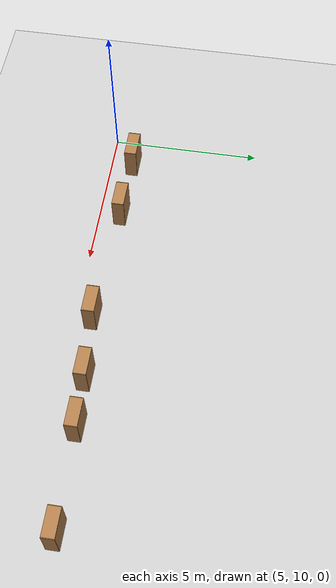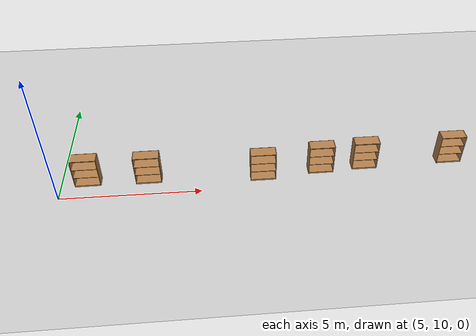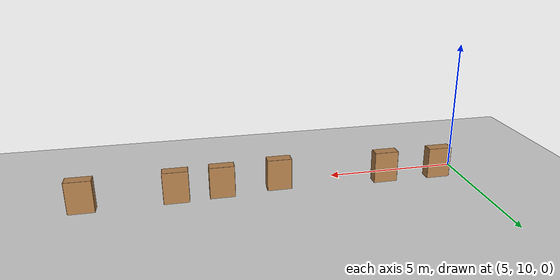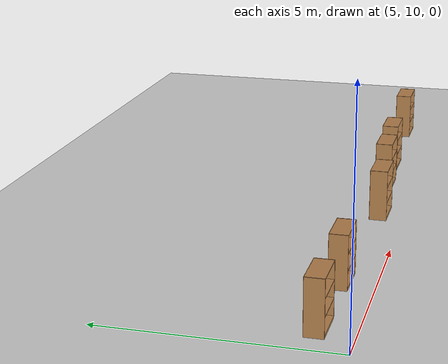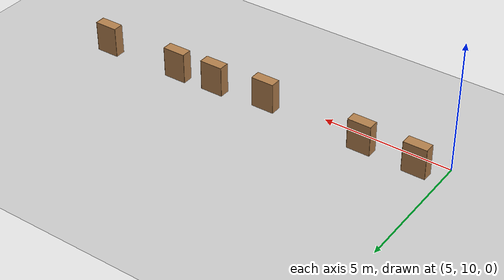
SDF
<sdf version="1.7">
 <world name="default">
  <model name="ground_plane">
   <static>1</static>
   <link name="link">
    <collision name="collision">
     <geometry><plane><normal>0 0 1</normal><size>100 100</size></plane></geometry>
     <surface><friction><ode><mu>100</mu><mu2>50</mu2></ode></friction></surface>
    </collision>
    <visual name="visual">
     <cast_shadows>0</cast_shadows>
     <geometry><plane><normal>0 0 1</normal><size>100 100</size></plane></geometry>
     <material>
      <script><uri>file://media/materials/scripts/gazebo.material</uri><name>Gazebo/Grey</name></script>
     </material>
    </visual>
   </link>
  </model>
  <model name="bookshelf_6">
   <static>1</static>
   <link name="link">
    <inertial><mass>1</mass></inertial>
    <collision name="back">
     <pose>0 0.005 0.6 0 -0 0</pose>
     <geometry><box><size>0.9 0.01 1.2</size></box></geometry>
    </collision>
    <visual name="visual1">
     <pose>0 0.005 0.6 0 -0 0</pose>
     <geometry><box><size>0.9 0.01 1.2</size></box></geometry>
     <material>
      <script><uri>file://media/materials/scripts/gazebo.material</uri><name>Gazebo/Wood</name></script>
     </material>
    </visual>
    <collision name="left_side">
     <pose>0.45 -0.195 0.6 0 -0 0</pose>
     <geometry><box><size>0.02 0.4 1.2</size></box></geometry>
    </collision>
    <visual name="visual2">
     <pose>0.45 -0.195 0.6 0 -0 0</pose>
     <geometry><box><size>0.02 0.4 1.2</size></box></geometry>
     <material>
      <script><uri>file://media/materials/scripts/gazebo.material</uri><name>Gazebo/Wood</name></script>
     </material>
    </visual>
    <collision name="right_side">
     <pose>-0.45 -0.195 0.6 0 -0 0</pose>
     <geometry><box><size>0.02 0.4 1.2</size></box></geometry>
    </collision>
    <visual name="visual3">
     <pose>-0.45 -0.195 0.6 0 -0 0</pose>
     <geometry><box><size>0.02 0.4 1.2</size></box></geometry>
     <material>
      <script><uri>file://media/materials/scripts/gazebo.material</uri><name>Gazebo/Wood</name></script>
     </material>
    </visual>
    <collision name="bottom">
     <pose>0 -0.195 0.03 0 -0 0</pose>
     <geometry><box><size>0.88 0.4 0.06</size></box></geometry>
    </collision>
    <visual name="visual4">
     <pose>0 -0.195 0.03 0 -0 0</pose>
     <geometry><box><size>0.88 0.4 0.06</size></box></geometry>
     <material>
      <script><uri>file://media/materials/scripts/gazebo.material</uri><name>Gazebo/Wood</name></script>
     </material>
    </visual>
    <collision name="top">
     <pose>0 -0.195 1.19 0 -0 0</pose>
     <geometry><box><size>0.88 0.4 0.02</size></box></geometry>
    </collision>
    <visual name="visual5">
     <pose>0 -0.195 1.19 0 -0 0</pose>
     <geometry><box><size>0.88 0.4 0.02</size></box></geometry>
     <material>
      <script><uri>file://media/materials/scripts/gazebo.material</uri><name>Gazebo/Wood</name></script>
     </material>
    </visual>
    <collision name="low_shelf">
     <pose>0 -0.195 0.43 0 -0 0</pose>
     <geometry><box><size>0.88 0.4 0.02</size></box></geometry>
    </collision>
    <visual name="visual6">
     <pose>0 -0.195 0.43 0 -0 0</pose>
     <geometry><box><size>0.88 0.4 0.02</size></box></geometry>
     <material>
      <script><uri>file://media/materials/scripts/gazebo.material</uri><name>Gazebo/Wood</name></script>
     </material>
    </visual>
    <collision name="high_shelf">
     <pose>0 -0.195 0.8 0 -0 0</pose>
     <geometry><box><size>0.88 0.4 0.02</size></box></geometry>
    </collision>
    <visual name="visual7">
     <pose>0 -0.195 0.8 0 -0 0</pose>
     <geometry><box><size>0.88 0.4 0.02</size></box></geometry>
     <material>
      <script><uri>file://media/materials/scripts/gazebo.material</uri><name>Gazebo/Wood</name></script>
     </material>
    </visual>
   </link>
   <pose>8.10292 10.9247 0 0 -0 0</pose>
  </model>
  <model name="bookshelf_7">
   <static>1</static>
   <link name="link">
    <inertial><mass>1</mass></inertial>
    <collision name="back">
     <pose>0 0.005 0.6 0 -0 0</pose>
     <geometry><box><size>0.9 0.01 1.2</size></box></geometry>
    </collision>
    <visual name="visual1">
     <pose>0 0.005 0.6 0 -0 0</pose>
     <geometry><box><size>0.9 0.01 1.2</size></box></geometry>
     <material>
      <script><uri>file://media/materials/scripts/gazebo.material</uri><name>Gazebo/Wood</name></script>
     </material>
    </visual>
    <collision name="left_side">
     <pose>0.45 -0.195 0.6 0 -0 0</pose>
     <geometry><box><size>0.02 0.4 1.2</size></box></geometry>
    </collision>
    <visual name="visual2">
     <pose>0.45 -0.195 0.6 0 -0 0</pose>
     <geometry><box><size>0.02 0.4 1.2</size></box></geometry>
     <material>
      <script><uri>file://media/materials/scripts/gazebo.material</uri><name>Gazebo/Wood</name></script>
     </material>
    </visual>
    <collision name="right_side">
     <pose>-0.45 -0.195 0.6 0 -0 0</pose>
     <geometry><box><size>0.02 0.4 1.2</size></box></geometry>
    </collision>
    <visual name="visual3">
     <pose>-0.45 -0.195 0.6 0 -0 0</pose>
     <geometry><box><size>0.02 0.4 1.2</size></box></geometry>
     <material>
      <script><uri>file://media/materials/scripts/gazebo.material</uri><name>Gazebo/Wood</name></script>
     </material>
    </visual>
    <collision name="bottom">
     <pose>0 -0.195 0.03 0 -0 0</pose>
     <geometry><box><size>0.88 0.4 0.06</size></box></geometry>
    </collision>
    <visual name="visual4">
     <pose>0 -0.195 0.03 0 -0 0</pose>
     <geometry><box><size>0.88 0.4 0.06</size></box></geometry>
     <material>
      <script><uri>file://media/materials/scripts/gazebo.material</uri><name>Gazebo/Wood</name></script>
     </material>
    </visual>
    <collision name="top">
     <pose>0 -0.195 1.19 0 -0 0</pose>
     <geometry><box><size>0.88 0.4 0.02</size></box></geometry>
    </collision>
    <visual name="visual5">
     <pose>0 -0.195 1.19 0 -0 0</pose>
     <geometry><box><size>0.88 0.4 0.02</size></box></geometry>
     <material>
      <script><uri>file://media/materials/scripts/gazebo.material</uri><name>Gazebo/Wood</name></script>
     </material>
    </visual>
    <collision name="low_shelf">
     <pose>0 -0.195 0.43 0 -0 0</pose>
     <geometry><box><size>0.88 0.4 0.02</size></box></geometry>
    </collision>
    <visual name="visual6">
     <pose>0 -0.195 0.43 0 -0 0</pose>
     <geometry><box><size>0.88 0.4 0.02</size></box></geometry>
     <material>
      <script><uri>file://media/materials/scripts/gazebo.material</uri><name>Gazebo/Wood</name></script>
     </material>
    </visual>
    <collision name="high_shelf">
     <pose>0 -0.195 0.8 0 -0 0</pose>
     <geometry><box><size>0.88 0.4 0.02</size></box></geometry>
    </collision>
    <visual name="visual7">
     <pose>0 -0.195 0.8 0 -0 0</pose>
     <geometry><box><size>0.88 0.4 0.02</size></box></geometry>
     <material>
      <script><uri>file://media/materials/scripts/gazebo.material</uri><name>Gazebo/Wood</name></script>
     </material>
    </visual>
   </link>
   <pose>12.2017 10.7548 0 0 -0 0</pose>
  </model>
  <model name="bookshelf_8">
   <static>1</static>
   <link name="link">
    <inertial><mass>1</mass></inertial>
    <collision name="back">
     <pose>0 0.005 0.6 0 -0 0</pose>
     <geometry><box><size>0.9 0.01 1.2</size></box></geometry>
    </collision>
    <visual name="visual1">
     <pose>0 0.005 0.6 0 -0 0</pose>
     <geometry><box><size>0.9 0.01 1.2</size></box></geometry>
     <material>
      <script><uri>file://media/materials/scripts/gazebo.material</uri><name>Gazebo/Wood</name></script>
     </material>
    </visual>
    <collision name="left_side">
     <pose>0.45 -0.195 0.6 0 -0 0</pose>
     <geometry><box><size>0.02 0.4 1.2</size></box></geometry>
    </collision>
    <visual name="visual2">
     <pose>0.45 -0.195 0.6 0 -0 0</pose>
     <geometry><box><size>0.02 0.4 1.2</size></box></geometry>
     <material>
      <script><uri>file://media/materials/scripts/gazebo.material</uri><name>Gazebo/Wood</name></script>
     </material>
    </visual>
    <collision name="right_side">
     <pose>-0.45 -0.195 0.6 0 -0 0</pose>
     <geometry><box><size>0.02 0.4 1.2</size></box></geometry>
    </collision>
    <visual name="visual3">
     <pose>-0.45 -0.195 0.6 0 -0 0</pose>
     <geometry><box><size>0.02 0.4 1.2</size></box></geometry>
     <material>
      <script><uri>file://media/materials/scripts/gazebo.material</uri><name>Gazebo/Wood</name></script>
     </material>
    </visual>
    <collision name="bottom">
     <pose>0 -0.195 0.03 0 -0 0</pose>
     <geometry><box><size>0.88 0.4 0.06</size></box></geometry>
    </collision>
    <visual name="visual4">
     <pose>0 -0.195 0.03 0 -0 0</pose>
     <geometry><box><size>0.88 0.4 0.06</size></box></geometry>
     <material>
      <script><uri>file://media/materials/scripts/gazebo.material</uri><name>Gazebo/Wood</name></script>
     </material>
    </visual>
    <collision name="top">
     <pose>0 -0.195 1.19 0 -0 0</pose>
     <geometry><box><size>0.88 0.4 0.02</size></box></geometry>
    </collision>
    <visual name="visual5">
     <pose>0 -0.195 1.19 0 -0 0</pose>
     <geometry><box><size>0.88 0.4 0.02</size></box></geometry>
     <material>
      <script><uri>file://media/materials/scripts/gazebo.material</uri><name>Gazebo/Wood</name></script>
     </material>
    </visual>
    <collision name="low_shelf">
     <pose>0 -0.195 0.43 0 -0 0</pose>
     <geometry><box><size>0.88 0.4 0.02</size></box></geometry>
    </collision>
    <visual name="visual6">
     <pose>0 -0.195 0.43 0 -0 0</pose>
     <geometry><box><size>0.88 0.4 0.02</size></box></geometry>
     <material>
      <script><uri>file://media/materials/scripts/gazebo.material</uri><name>Gazebo/Wood</name></script>
     </material>
    </visual>
    <collision name="high_shelf">
     <pose>0 -0.195 0.8 0 -0 0</pose>
     <geometry><box><size>0.88 0.4 0.02</size></box></geometry>
    </collision>
    <visual name="visual7">
     <pose>0 -0.195 0.8 0 -0 0</pose>
     <geometry><box><size>0.88 0.4 0.02</size></box></geometry>
     <material>
      <script><uri>file://media/materials/scripts/gazebo.material</uri><name>Gazebo/Wood</name></script>
     </material>
    </visual>
   </link>
   <pose>15.9545 11.0352 0 0 -0 0</pose>
  </model>
  <model name="bookshelf_9">
   <static>1</static>
   <link name="link">
    <inertial><mass>1</mass></inertial>
    <collision name="back">
     <pose>0 0.005 0.6 0 -0 0</pose>
     <geometry><box><size>0.9 0.01 1.2</size></box></geometry>
    </collision>
    <visual name="visual1">
     <pose>0 0.005 0.6 0 -0 0</pose>
     <geometry><box><size>0.9 0.01 1.2</size></box></geometry>
     <material>
      <script><uri>file://media/materials/scripts/gazebo.material</uri><name>Gazebo/Wood</name></script>
     </material>
    </visual>
    <collision name="left_side">
     <pose>0.45 -0.195 0.6 0 -0 0</pose>
     <geometry><box><size>0.02 0.4 1.2</size></box></geometry>
    </collision>
    <visual name="visual2">
     <pose>0.45 -0.195 0.6 0 -0 0</pose>
     <geometry><box><size>0.02 0.4 1.2</size></box></geometry>
     <material>
      <script><uri>file://media/materials/scripts/gazebo.material</uri><name>Gazebo/Wood</name></script>
     </material>
    </visual>
    <collision name="right_side">
     <pose>-0.45 -0.195 0.6 0 -0 0</pose>
     <geometry><box><size>0.02 0.4 1.2</size></box></geometry>
    </collision>
    <visual name="visual3">
     <pose>-0.45 -0.195 0.6 0 -0 0</pose>
     <geometry><box><size>0.02 0.4 1.2</size></box></geometry>
     <material>
      <script><uri>file://media/materials/scripts/gazebo.material</uri><name>Gazebo/Wood</name></script>
     </material>
    </visual>
    <collision name="bottom">
     <pose>0 -0.195 0.03 0 -0 0</pose>
     <geometry><box><size>0.88 0.4 0.06</size></box></geometry>
    </collision>
    <visual name="visual4">
     <pose>0 -0.195 0.03 0 -0 0</pose>
     <geometry><box><size>0.88 0.4 0.06</size></box></geometry>
     <material>
      <script><uri>file://media/materials/scripts/gazebo.material</uri><name>Gazebo/Wood</name></script>
     </material>
    </visual>
    <collision name="top">
     <pose>0 -0.195 1.19 0 -0 0</pose>
     <geometry><box><size>0.88 0.4 0.02</size></box></geometry>
    </collision>
    <visual name="visual5">
     <pose>0 -0.195 1.19 0 -0 0</pose>
     <geometry><box><size>0.88 0.4 0.02</size></box></geometry>
     <material>
      <script><uri>file://media/materials/scripts/gazebo.material</uri><name>Gazebo/Wood</name></script>
     </material>
    </visual>
    <collision name="low_shelf">
     <pose>0 -0.195 0.43 0 -0 0</pose>
     <geometry><box><size>0.88 0.4 0.02</size></box></geometry>
    </collision>
    <visual name="visual6">
     <pose>0 -0.195 0.43 0 -0 0</pose>
     <geometry><box><size>0.88 0.4 0.02</size></box></geometry>
     <material>
      <script><uri>file://media/materials/scripts/gazebo.material</uri><name>Gazebo/Wood</name></script>
     </material>
    </visual>
    <collision name="high_shelf">
     <pose>0 -0.195 0.8 0 -0 0</pose>
     <geometry><box><size>0.88 0.4 0.02</size></box></geometry>
    </collision>
    <visual name="visual7">
     <pose>0 -0.195 0.8 0 -0 0</pose>
     <geometry><box><size>0.88 0.4 0.02</size></box></geometry>
     <material>
      <script><uri>file://media/materials/scripts/gazebo.material</uri><name>Gazebo/Wood</name></script>
     </material>
    </visual>
   </link>
   <pose>19.1556 11.1082 0 0 -0 0</pose>
  </model>
  <model name="bookshelf_15">
   <static>1</static>
   <link name="link">
    <inertial><mass>1</mass></inertial>
    <collision name="back">
     <pose>0 0.005 0.6 0 -0 0</pose>
     <geometry><box><size>0.9 0.01 1.2</size></box></geometry>
    </collision>
    <visual name="visual1">
     <pose>0 0.005 0.6 0 -0 0</pose>
     <geometry><box><size>0.9 0.01 1.2</size></box></geometry>
     <material>
      <script><uri>file://media/materials/scripts/gazebo.material</uri><name>Gazebo/Wood</name></script>
     </material>
    </visual>
    <collision name="left_side">
     <pose>0.45 -0.195 0.6 0 -0 0</pose>
     <geometry><box><size>0.02 0.4 1.2</size></box></geometry>
    </collision>
    <visual name="visual2">
     <pose>0.45 -0.195 0.6 0 -0 0</pose>
     <geometry><box><size>0.02 0.4 1.2</size></box></geometry>
     <material>
      <script><uri>file://media/materials/scripts/gazebo.material</uri><name>Gazebo/Wood</name></script>
     </material>
    </visual>
    <collision name="right_side">
     <pose>-0.45 -0.195 0.6 0 -0 0</pose>
     <geometry><box><size>0.02 0.4 1.2</size></box></geometry>
    </collision>
    <visual name="visual3">
     <pose>-0.45 -0.195 0.6 0 -0 0</pose>
     <geometry><box><size>0.02 0.4 1.2</size></box></geometry>
     <material>
      <script><uri>file://media/materials/scripts/gazebo.material</uri><name>Gazebo/Wood</name></script>
     </material>
    </visual>
    <collision name="bottom">
     <pose>0 -0.195 0.03 0 -0 0</pose>
     <geometry><box><size>0.88 0.4 0.06</size></box></geometry>
    </collision>
    <visual name="visual4">
     <pose>0 -0.195 0.03 0 -0 0</pose>
     <geometry><box><size>0.88 0.4 0.06</size></box></geometry>
     <material>
      <script><uri>file://media/materials/scripts/gazebo.material</uri><name>Gazebo/Wood</name></script>
     </material>
    </visual>
    <collision name="top">
     <pose>0 -0.195 1.19 0 -0 0</pose>
     <geometry><box><size>0.88 0.4 0.02</size></box></geometry>
    </collision>
    <visual name="visual5">
     <pose>0 -0.195 1.19 0 -0 0</pose>
     <geometry><box><size>0.88 0.4 0.02</size></box></geometry>
     <material>
      <script><uri>file://media/materials/scripts/gazebo.material</uri><name>Gazebo/Wood</name></script>
     </material>
    </visual>
    <collision name="low_shelf">
     <pose>0 -0.195 0.43 0 -0 0</pose>
     <geometry><box><size>0.88 0.4 0.02</size></box></geometry>
    </collision>
    <visual name="visual6">
     <pose>0 -0.195 0.43 0 -0 0</pose>
     <geometry><box><size>0.88 0.4 0.02</size></box></geometry>
     <material>
      <script><uri>file://media/materials/scripts/gazebo.material</uri><name>Gazebo/Wood</name></script>
     </material>
    </visual>
    <collision name="high_shelf">
     <pose>0 -0.195 0.8 0 -0 0</pose>
     <geometry><box><size>0.88 0.4 0.02</size></box></geometry>
    </collision>
    <visual name="visual7">
     <pose>0 -0.195 0.8 0 -0 0</pose>
     <geometry><box><size>0.88 0.4 0.02</size></box></geometry>
     <material>
      <script><uri>file://media/materials/scripts/gazebo.material</uri><name>Gazebo/Wood</name></script>
     </material>
    </visual>
   </link>
   <pose>5.94155 10.9566 0 0 -0 0</pose>
  </model>
  <model name="bookshelf_16">
   <static>1</static>
   <link name="link">
    <inertial><mass>1</mass></inertial>
    <collision name="back">
     <pose>0 0.005 0.6 0 -0 0</pose>
     <geometry><box><size>0.9 0.01 1.2</size></box></geometry>
    </collision>
    <visual name="visual1">
     <pose>0 0.005 0.6 0 -0 0</pose>
     <geometry><box><size>0.9 0.01 1.2</size></box></geometry>
     <material>
      <script><uri>file://media/materials/scripts/gazebo.material</uri><name>Gazebo/Wood</name></script>
     </material>
    </visual>
    <collision name="left_side">
     <pose>0.45 -0.195 0.6 0 -0 0</pose>
     <geometry><box><size>0.02 0.4 1.2</size></box></geometry>
    </collision>
    <visual name="visual2">
     <pose>0.45 -0.195 0.6 0 -0 0</pose>
     <geometry><box><size>0.02 0.4 1.2</size></box></geometry>
     <material>
      <script><uri>file://media/materials/scripts/gazebo.material</uri><name>Gazebo/Wood</name></script>
     </material>
    </visual>
    <collision name="right_side">
     <pose>-0.45 -0.195 0.6 0 -0 0</pose>
     <geometry><box><size>0.02 0.4 1.2</size></box></geometry>
    </collision>
    <visual name="visual3">
     <pose>-0.45 -0.195 0.6 0 -0 0</pose>
     <geometry><box><size>0.02 0.4 1.2</size></box></geometry>
     <material>
      <script><uri>file://media/materials/scripts/gazebo.material</uri><name>Gazebo/Wood</name></script>
     </material>
    </visual>
    <collision name="bottom">
     <pose>0 -0.195 0.03 0 -0 0</pose>
     <geometry><box><size>0.88 0.4 0.06</size></box></geometry>
    </collision>
    <visual name="visual4">
     <pose>0 -0.195 0.03 0 -0 0</pose>
     <geometry><box><size>0.88 0.4 0.06</size></box></geometry>
     <material>
      <script><uri>file://media/materials/scripts/gazebo.material</uri><name>Gazebo/Wood</name></script>
     </material>
    </visual>
    <collision name="top">
     <pose>0 -0.195 1.19 0 -0 0</pose>
     <geometry><box><size>0.88 0.4 0.02</size></box></geometry>
    </collision>
    <visual name="visual5">
     <pose>0 -0.195 1.19 0 -0 0</pose>
     <geometry><box><size>0.88 0.4 0.02</size></box></geometry>
     <material>
      <script><uri>file://media/materials/scripts/gazebo.material</uri><name>Gazebo/Wood</name></script>
     </material>
    </visual>
    <collision name="low_shelf">
     <pose>0 -0.195 0.43 0 -0 0</pose>
     <geometry><box><size>0.88 0.4 0.02</size></box></geometry>
    </collision>
    <visual name="visual6">
     <pose>0 -0.195 0.43 0 -0 0</pose>
     <geometry><box><size>0.88 0.4 0.02</size></box></geometry>
     <material>
      <script><uri>file://media/materials/scripts/gazebo.material</uri><name>Gazebo/Wood</name></script>
     </material>
    </visual>
    <collision name="high_shelf">
     <pose>0 -0.195 0.8 0 -0 0</pose>
     <geometry><box><size>0.88 0.4 0.02</size></box></geometry>
    </collision>
    <visual name="visual7">
     <pose>0 -0.195 0.8 0 -0 0</pose>
     <geometry><box><size>0.88 0.4 0.02</size></box></geometry>
     <material>
      <script><uri>file://media/materials/scripts/gazebo.material</uri><name>Gazebo/Wood</name></script>
     </material>
    </visual>
   </link>
   <pose>14.3239 10.9505 0 0 -0 0</pose>
  </model>
 </world>
</sdf>
